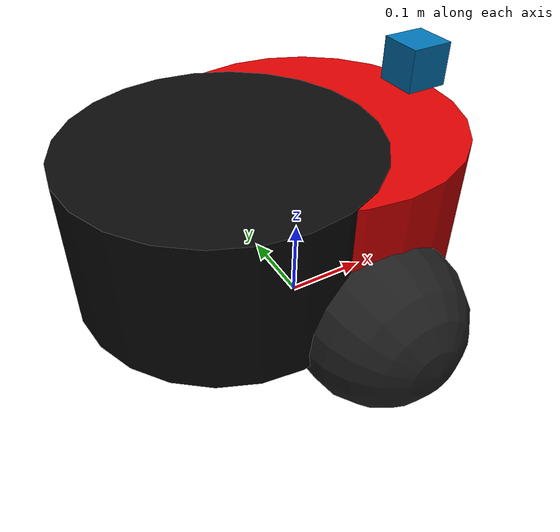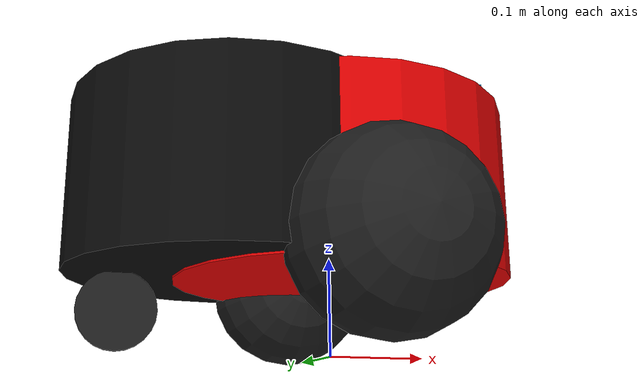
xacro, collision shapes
<?xml version="1.0"?>
<robot xmlns:xacro="http://ros.org/wiki/xacro" name="pioneer3dx" >

  <xacro:arg name="models_dir"       default="/home/michal/Desktop/RM/projekt-roboty-mobilne/pioneer3dx_description/description"/>
  <xacro:arg name="robot_model"      default="pioneer3dx"/>
  <xacro:arg name="laser_model"      default="hokuyo"/>
  <xacro:arg name="namespace"        default="r0"/>
  <xacro:arg name="robot_name"       default="r0"/>
  <xacro:arg name="laser0_topic"     default="scan_raw"/>
  <xacro:arg name="laser0_visualize" default="true"/>
  <xacro:arg name="laser0_driver"    default="gpu"/>

  <xacro:property name="models_dir"    value="$(arg models_dir)"/>
  <xacro:property name="namespace"    value="$(arg namespace)"/>
  <xacro:property name="robot_model"   value="$(arg robot_model)"/>
  <xacro:property name="laser_model"   value="$(arg laser_model)"/>

  <!-- Import Rviz colors -->
  <xacro:include filename="${models_dir}/materials.xacro" />

  <!-- Import platform -->
  <xacro:include filename="${models_dir}/${robot_model}/body/body.xacro"/>
  <xacro:vehicle_body name="body" parent="base_link"/>

  <!-- differential drive  and joint stage plugin -->
  <xacro:include filename="${models_dir}/${robot_model}/plugins.xacro"/>
  <xacro:differential_drive    name="$(arg robot_name)"/>
  <xacro:joint_state_publisher name="$(arg robot_name)"/>

  <!-- Laser -->
  <xacro:include filename="${models_dir}/${laser_model}/main.xacro"/>
  <xacro:laser name="laser0" parent="top" namespace="${namespace}" topic_name="$(arg laser0_topic)" frame_name="laser0" xyz="0.15 0.0 0.06" rpy="0 0 0" driver="$(arg laser0_driver)" visualize="$(arg laser0_visualize)"/>
</robot>

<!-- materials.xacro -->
<robot xmlns:xacro="http://ros.org/wiki/xacro">

  <material name="black">
    <color rgba="0.0 0.0 0.0 1.0"/>
  </material>

  <material name="blue">
    <color rgba="0.0 0.0 0.8 1.0"/>
  </material>

  <material name="light_blue">
    <color rgba="${100/255} ${134/255} ${213/255} 1.0"/>
  </material>

  <material name="green">
    <color rgba="0.0 0.8 0.0 1.0"/>
  </material>

  <material name="light_grey">
    <color rgba="0.5 0.5 0.5 1.0"/>
  </material>

  <material name="grey">
    <color rgba="0.2 0.2 0.2 1.0"/>
  </material>

  <material name="orange">
    <color rgba="${255/255} ${108/255} ${10/255} 1.0"/>
  </material>

  <material name="brown">
    <color rgba="${222/255} ${207/255} ${195/255} 1.0"/>
  </material>

  <material name="red">
    <color rgba="0.8 0.0 0.0 1.0"/>
  </material>

  <material name="white">
    <color rgba="1.0 1.0 1.0 1.0"/>
  </material>

  <material name="TopBlack">
    <color rgba="0.038 0.038 0.038 1.0"/>
  </material>

</robot>

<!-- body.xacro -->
<robot xmlns:xacro="http://ros.org/wiki/xacro">

  <xacro:include filename="$(find pioneer3dx_description)/description/inertia_tensors.xacro"/>
  <xacro:include filename="chassis.xacro"/>
  <xacro:include filename="wheel.xacro"/>
  <xacro:include filename="battery_block.xacro"/>
  <xacro:include filename="swivel.xacro"/>
  <xacro:include filename="sonar.xacro"/>
  <xacro:property name="wheel_radius" value="0.097" />

  <!-- name="body" parent="base_link" -->
  <xacro:macro name="vehicle_body" params="name parent">

    <!-- base_link -->
    <link name="${parent}"/>

    <!-- Chassis -->
    <xacro:pioneer_chassis name="${name}" parent="${parent}" xyz="0 0 0.068" rpy="0 0 0"/>

    <!-- Front Sonar -->
    <xacro:pioneer_sonar name="sonar" parent="${name}" xyz="0.109 0 0.15" rpy="0 0 0"/>

    <!-- Akku0 -->
    <xacro:pioneer_battery_block name="battery0" parent="${name}" x="-0.14" y="0.00"  z="${0.13-0.068}" mass="2.5" />

    <!-- Wheels -->

    <!-- Swivels -->
    <xacro:pioneer_swivel  name="swivel"    parent="${parent}"  xyz="-0.185 0    0.0555" rpy="0 0 0"/>

    <!-- Wheels -->
    <xacro:pioneer_wheel name="right" parent="${parent}"  xyz=" 0    -0.16 ${wheel_radius - 0.005}" rpy="0 0 0" radius="${wheel_radius}"/>
    <xacro:pioneer_wheel name="left"  parent="${parent}"  xyz=" 0     0.16 ${wheel_radius - 0.005}" rpy="0 0 0" radius="${wheel_radius}"/>

  </xacro:macro>
</robot>

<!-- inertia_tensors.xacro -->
<robot xmlns:xacro="http://ros.org/wiki/xacro">

  <xacro:macro name="box_inertial" params="x y z mass">
    <inertial>
      <mass value="${mass}" />
      <origin xyz="0 0 0" />
      <inertia ixx="${0.6 * mass * (y*y + z*z)}" ixy="0.0" ixz="0.0"
        iyy="${0.6 * mass * (x*x + z*z)}" iyz="0.0"
        izz="${0.6 * mass * (x*x + y*y)}" />
    </inertial>
  </xacro:macro>

  <xacro:macro name="battery_inertial" params="x y z mass">
    <inertial>
      <mass value="${mass}" />
      <origin xyz="0 0 0" />
      <inertia ixx="0.002721" ixy="0.0" ixz="0.0"
        iyy="0.006591" iyz="0.0"
        izz="0.00563" />
    </inertial>
  </xacro:macro>

  <xacro:macro name="swivel_inertial" params="x y z mass">
    <inertial>
      <mass value="${mass}" />
      <origin xyz="0 0 0" />
      <inertia  ixx="5.876536110680137e-06" ixy="0" ixz="0" iyy="6.883097132329522e-06" iyz="0" izz="7.981068845009006e-06" />
    </inertial>
  </xacro:macro>

  <xacro:macro name="chassis_inertial" params="x y z mass">
    <inertial>
      <mass value="${mass}" />
      <origin xyz="0 0 0" />
      <inertia  ixx="0.000077" ixy="0" ixz="0" iyy="0.000173" iyz="0" izz="0.000124" />
    </inertial>
  </xacro:macro>

  <xacro:macro name="drive_wheel_inertia" params="radius length mass xyz rpy">
    <inertial>
      <mass value="${mass}" />
      <origin xyz="${xyz}" rpy="${rpy}" />
      <inertia  ixx="0.0014555766001853741" ixy="0" ixz="0" iyy="0.0027740336319765913" iyz="0" izz="0.0014555766001853741" />
    </inertial>
  </xacro:macro>

  <xacro:macro name="caster_wheel_inertia" params="radius length mass xyz rpy">
    <inertial>
      <mass value="${mass}" />
      <origin xyz="${xyz}" rpy="${rpy}" />
      <inertia  ixx="5.7040203734464354e-05" ixy="0" ixz="0" iyy="9.727481306215415e-05" iyz="0" izz="5.7040194247774674e-05" />
    </inertial>
  </xacro:macro>

</robot>

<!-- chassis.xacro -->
<robot xmlns:xacro="http://ros.org/wiki/xacro">
  <xacro:property name="M_PI" value="3.1415926535897931" />

  <xacro:macro name="pioneer_chassis" params="name parent xyz rpy models_dir:=^">

  <!-- Chassis -->
  <joint name="${parent}_${name}_joint" type="fixed">
    <origin xyz="${xyz}" rpy="${rpy}"/>
    <parent link="${parent}"/>
    <child link="${name}"/>
  </joint>
  <link name="${name}">
    <visual>
      <origin xyz="-0.045 0 0.085" rpy="0 0 0"/>
      <geometry>
        <mesh filename="file://${models_dir}/pioneer3dx/body/meshes/chassis.dae"/>
      </geometry>
      <material name="ChassisRed">
        <color rgba="0.851 0.0 0.0 1.0"/>
      </material>
    </visual>
    <collision>
      <origin xyz="0.01 0 0.09" rpy="0 0 0"/>
      <geometry>
          <cylinder radius="0.17" length="0.17"/>
      </geometry>
    </collision>
    <box_inertial_with_origin x="0.35" y="0.25"  z="0.17" mass="9.0">
        <origin xyz="-0.04 0 0.15" rpy="0 0 0"/>
    </box_inertial_with_origin>
  </link>
  <gazebo reference="${name}">
    <material value="Gazebo/Red"/>
  </gazebo>

  <!-- Top -->
  <joint name="${name}_top_joint" type="fixed">
    <origin xyz="0 0 0.245" rpy="0 0 0"/>
    <parent link="${parent}"/>
    <child link="top"/>
  </joint>
  <link name="top">
    <visual>
      <origin xyz="-0.045 0 0" rpy="0 0 0"/>
      <geometry>
        <mesh filename="file://${models_dir}/pioneer3dx/body/meshes/top.dae"/>
      </geometry>
      <material name="TopBlack">
        <color rgba="0.038 0.038 0.038 1.0"/>
      </material>
    </visual>
    <collision>
    <origin xyz="${-0.045-0.05} 0 ${-0.235+0.15}" rpy="0 0 0"/>
    <geometry><cylinder radius="0.17" length="0.17"/> </geometry>
    </collision>
    <box_inertial_with_origin x="0.45" y="0.35"  z="0.001" mass="1.0"> <origin xyz="0.00 0 0.00" rpy="0 0 0"/> </box_inertial_with_origin>
  </link>
  <gazebo reference="top">
    <material value="Gazebo/Black"/>
  </gazebo>

  </xacro:macro>

</robot>

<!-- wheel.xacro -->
<robot
  xmlns:xacro="http://ros.org/wiki/xacro">

  <xacro:macro name="pioneer_wheel" params="name parent xyz rpy radius models_dir:=^">

    <!-- Wheel -->
    <joint name="${name}_wheel_joint" type="continuous">
		<origin xyz="${xyz}" rpy="${rpy}"/>
		<parent link="${parent}"/>
		<child link="${name}_wheel"/>
		<axis xyz="0 1 0"/>
		<dynamics damping="0.2" friction="0.7"/>
    </joint>
    <link name="${name}_wheel">
		<xacro:drive_wheel_inertia radius="${radius}" length="0.02" mass="0.5" xyz="0 0 0" rpy="0 0 0"/>
		<visual>
			<origin xyz="0 0 0" rpy="0 0 0"/>
			<geometry>
				<mesh filename="file://${models_dir}/pioneer3dx/body/meshes/wheel.dae"/>
			</geometry>
			<material name="WheelBlack"> <color rgba="0.117 0.117 0.117 1"/> </material>
		</visual>
		<collision>
			<origin xyz="0 0 0" rpy="${pi/2} 0 0"/>
			<geometry>
				<sphere radius="0.0912"/>
			</geometry>
		</collision>
    </link>
	<gazebo reference="${name}_wheel">
		<material value="Gazebo/Black"/>
		<mu1>1.0</mu1>
		<mu2>1.0</mu2>
		<mu1>10.0</mu1>
		<mu2>10.0</mu2>
		<kp>1000000.0</kp>
		<kd>100.0</kd>
		<minDepth>0.001</minDepth>
		<maxVel>1.0</maxVel>
    </gazebo>

    <!-- Hubcap -->
    <joint name="${name}_hub_joint" type="fixed">
		<origin xyz="0 0 0" rpy="0 0 0"/>
		<axis xyz="0 1 0"/>
		<parent link="${name}_wheel"/>
		<child link="${name}_hub"/>
    </joint>
    <link name="${name}_hub">
		<visual>
			<origin xyz="0 0 0" rpy="0 0 0"/>
			<geometry>
				<mesh filename="file://${models_dir}/pioneer3dx/body/meshes/hubcap.dae"/>
			</geometry>
			<material name="HubcapYellow"> <color rgba="1.0 0.811 0.151 1.0"/> </material>
		</visual>
		<collision>
			<origin xyz="0 0 0" rpy="0 0 0"/>
			<geometry>
				<box size="0.001 0.001 0.001"/>
			</geometry>
		</collision>
    </link>
		<gazebo reference="${name}_hub">
		<material value="Gazebo/Yellow"/>
    </gazebo>

  </xacro:macro>

</robot>

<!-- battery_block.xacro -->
<robot xmlns:xacro="http://ros.org/wiki/xacro">
  <xacro:property name="M_PI" value="3.1415926535897931" />

  <xacro:macro name="pioneer_battery_block" params="name parent x y z mass">

  <joint name="${parent}_${name}_joint" type="fixed">
    <origin xyz="${x} ${y} ${z}" rpy="0 0 0"/>
    <parent link="${parent}"/>
    <child link="${name}"/>
  </joint>
  <link name="${name}">
    <visual name="${name}_visual">
      <origin xyz="0 0 0" rpy="0 0 0"/>
      <geometry name="${name}_geometry">
        <box size="0.151 0.065 0.094"/>
      </geometry>
      <material name="${name}_material">
        <color rgba="0.038 0.038 0.038 1.0"/>
      </material>
    </visual>
    <xacro:battery_inertial x="0.151" y="0.065" z="0.094" mass="${mass}"/>
  </link>
  <gazebo reference="${name}">
    <material value="Gazebo/Black"/>
  </gazebo>

  </xacro:macro>

</robot>

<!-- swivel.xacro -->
<robot xmlns:xacro="http://ros.org/wiki/xacro">
  <xacro:property name="M_PI" value="3.1415926535897931" />

  <xacro:macro name="pioneer_swivel" params="name parent xyz rpy models_dir:=^ ">

  <!-- Swivel -->
  <joint name="${name}_joint" type="continuous">
    <origin xyz="${xyz}" rpy="${rpy}"/>
    <axis xyz="0 0 1"/>
    <anchor xyz="0 0 0"/>
    <limit effort="100" velocity="100" k_velocity="0"/>
    <joint_properties damping="0.1" friction="0.0"/>
    <parent link="${parent}"/>
    <child link="${name}"/>
  </joint>
  <link name="${name}">
    <xacro:swivel_inertial x="0.01" y="0.01"  z="0.01" mass="0.01" />
    <visual>
      <origin xyz="0 0 0" rpy="0 0 0"/>
      <geometry>
        <mesh filename="file://${models_dir}/pioneer3dx/body/meshes/swivel.stl"/>
      </geometry>
      <material name="swivel">
        <color rgba="0.5 0.5 0.5 1"/>
      </material>
    </visual>
    <collision>
      <origin xyz="0 0 0" rpy="0 0 0"/>
      <geometry>
        <box size="0.001 0.001 0.001"/>
      </geometry>
    </collision>
  </link>
  <gazebo reference="${name}">
    <material value="Gazebo/Grey"/>
    <mu1>0.0</mu1>
    <mu2>0.0</mu2>
    <mu1>0.1</mu1>
    <mu2>0.1</mu2>
    <kp>1000000.0</kp>
    <kd>100.0</kd>
    <minDepth>0.001</minDepth>
    <maxVel>1.0</maxVel>
  </gazebo>

  <!-- Center Wheel -->
  <joint name="${name}_wheel_joint" type="continuous">
    <origin xyz="-0.026 0 -0.016" rpy="0 0 0"/>
    <axis xyz="0 1 0" />
    <anchor xyz="0 0 0"/>
    <parent link="${name}"/>
    <child link="${name}_wheel"/>
  </joint>
  <link name="${name}_wheel">
		<xacro:caster_wheel_inertia radius="${0.0375}" length="0.02" mass="0.1" xyz="0 0 0" rpy="0 0 0"/>
    <visual>
      <origin xyz="0 0 0" rpy="0 0 0"/>
      <geometry>
        <mesh filename="file://${models_dir}/pioneer3dx/body/meshes/center_wheel.stl"/>
      </geometry>
      <material name="WheelBlack">
        <color rgba="0.117 0.117 0.117 1"/>
      </material>
    </visual>
    <collision>
      <origin xyz="0 0 0" rpy="${-3.1415927/2.0} 0 0"/>
      <geometry>
        <cylinder radius="0.038" length="0.01"/>
      </geometry>
    </collision>
  </link>
  <gazebo reference="${name}_wheel">
    <material value="Gazebo/Black"/>
    <mu1>0.0</mu1>
    <mu2>0.0</mu2>
    <mu1>0.1</mu1>
    <mu2>0.1</mu2>
    <kp>1000000.0</kp>
    <kd>100.0</kd>
    <minDepth>0.001</minDepth>
    <maxVel>1.0</maxVel>
  </gazebo>

  <!-- Center Hubcap -->
  <joint name="${name}_hubcap_joint" type="fixed">
    <origin xyz="0 0 0" rpy="0 0 0"/>
    <parent link="${name}_wheel"/>
    <child link="${name}_hubcap"/>
  </joint>
  <link name="${name}_hubcap">
    <xacro:box_inertial x="0.01" y="0.01"  z="0.01" mass="0.01" />
    <visual>
      <origin xyz="0 0 0" rpy="0 0 0"/>
      <geometry>
        <mesh filename="file://${models_dir}/pioneer3dx/body/meshes/center_hubcap.stl"/>
      </geometry>
      <material name="swivel">
        <color rgba="0.5 0.5 0.5 1"/>
      </material>
    </visual>
    <collision>
      <origin xyz="0 0 0" rpy="0 0 0"/>
      <geometry>
        <box size="0.001 0.001 0.001"/>
      </geometry>
    </collision>
  </link>
  <gazebo reference="${name}_hubcap">
    <material value="Gazebo/Grey"/>
  </gazebo>

  </xacro:macro>

</robot>

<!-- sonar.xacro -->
<robot xmlns:xacro="http://ros.org/wiki/xacro">
  <xacro:property name="M_PI" value="3.1415926535897931" />

  <xacro:macro name="pioneer_sonar" params="name parent xyz rpy models_dir:=^">

  <!-- Front Sonar -->
  <joint name="${parent}_${name}_joint" type="fixed">
    <origin xyz="${xyz}" rpy="${rpy}"/>
    <parent link="${parent}"/>
    <child link="${name}"/>
  </joint>
  <link name="${name}">
    <xacro:box_inertial x="0.01" y="0.01"  z="0.01" mass="0.01" />
    <visual>
      <origin xyz="0 0 0" rpy="0 0 0"/>
      <geometry>
        <mesh filename="file://${models_dir}/pioneer3dx/body/meshes/back_sonar.dae"/>
      </geometry>
      <material name="SonarYellow">
        <color rgba="0.715 0.583 0.210 1.0"/>
      </material>
    </visual>
    <collision>
      <origin xyz="0 0 0" rpy="0 0 0"/>
      <geometry>
        <box size="0.001 0.001 0.001"/>
      </geometry>
    </collision>
  </link>
  <gazebo reference="${name}">
    <material value="Gazebo/Yellow"/>
  </gazebo>

  </xacro:macro>

</robot>

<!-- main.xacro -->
<robot xmlns:xacro="http://ros.org/wiki/xacro" name="hokuyo" >

    <!-- hokuyo Laser -->
    <xacro:macro name="laser" params="name parent namespace topic_name frame_name xyz rpy driver:=cpu visualize:=true models_dir:=^" >

        <xacro:property name="sensor_type" value="ray"/>

        <joint name="${parent}_${name}_joint" type="fixed">
            <axis xyz="0 0 1" />
            <origin xyz="${xyz}" rpy="${rpy}"/>
            <parent link="${parent}"/>
            <child link="${name}"/>
        </joint>

        <link name="${name}">
            <collision>
                <origin xyz="0 0 -0.025" rpy="0 0 0"/>
                <geometry>
                <box size="0.05 0.05 0.05"/>
                </geometry>
            </collision>
            <visual>
                <origin xyz="0 0 -0.025" rpy="0 0 0"/>
                <geometry>
                <mesh filename="file://${models_dir}/hokuyo/meshes/hokuyo.dae"/>
                </geometry>
            </visual>
            <inertial>
                <mass value="1e-2" />
                <origin xyz="0 0 -0.025" rpy="0 0 0"/>
                <inertia ixx="1e-6" ixy="0" ixz="0" iyy="1e-6" iyz="0" izz="1e-6" />
            </inertial>

        </link>

            <!-- ray sensor -->
            <gazebo reference="${name}">
                <sensor name="${name}_sensor" type="${sensor_type}">
                    <pose>0 0 0 0 0 0</pose>
                    <update_rate>30</update_rate>
                    <visualize>${visualize}</visualize>
                    <always_on>true</always_on>
                    <ray>
                        <scan>
                            <horizontal>
                                <samples>683</samples>
                                <resolution>1.0</resolution>
                                <min_angle>-2.35619449019</min_angle>
                                <max_angle>2.35619449019</max_angle>
                            </horizontal>
                        </scan>
                        <range>
                            <min>0.05</min>
                            <max>10</max>
                        </range>
                        <noise>
                            <type>gaussian</type>
                            <mean>0.0</mean>
                            <stddev>0.01</stddev>
                        </noise>
                    </ray>
                    <plugin name="${name}_laserscan" filename="libgazebo_ros_ray_sensor.so">
                        <ros>
                            <namespace>${namespace}</namespace>
                            <remapping>~/out:=${topic_name}</remapping>
                        </ros>
                        <output_type>sensor_msgs/LaserScan</output_type>
                        <frame_name>${frame_name}</frame_name>
                    </plugin>
                </sensor>
            </gazebo>

    </xacro:macro>

</robot>
